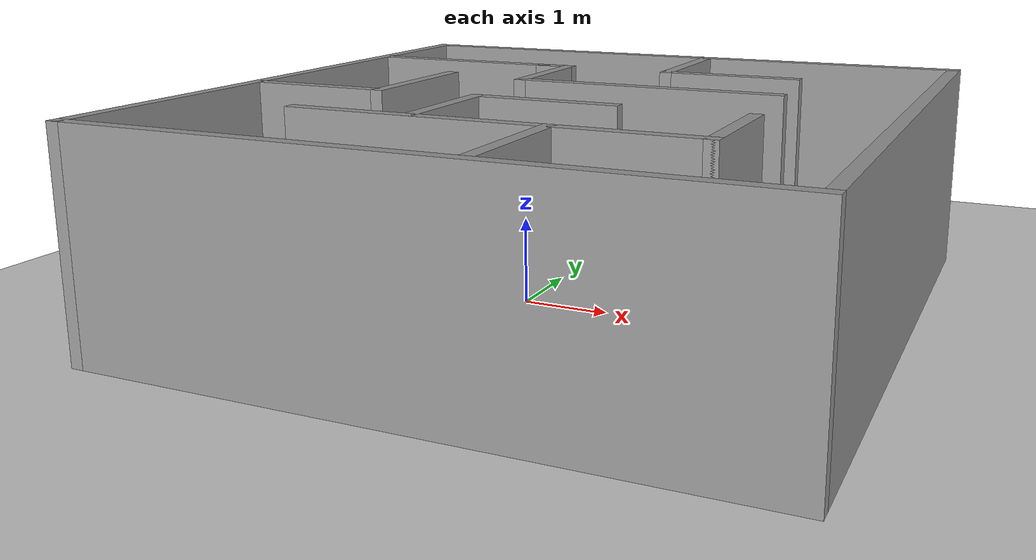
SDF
<sdf version="1.7">
 <world name="default">
  <light name="sun" type="directional">
   <pose>0 0 10 0 -0 0</pose>
   <diffuse>0.8 0.8 0.8 1</diffuse>
   <specular>0.2 0.2 0.2 1</specular>
   <attenuation>
    <range>1000</range>
    <constant>0.9</constant>
    <linear>0.01</linear>
    <quadratic>0.001</quadratic>
   </attenuation>
   <direction>-0.5 0.1 -0.9</direction>
   <spot><inner_angle>0</inner_angle><outer_angle>0</outer_angle><falloff>0</falloff></spot>
  </light>
  <model name="ground_plane">
   <static>1</static>
   <link name="link">
    <collision name="collision">
     <geometry><plane><normal>0 0 1</normal><size>100 100</size></plane></geometry>
     <surface><friction><ode><mu>100</mu><mu2>50</mu2></ode></friction></surface>
    </collision>
    <visual name="visual">
     <cast_shadows>0</cast_shadows>
     <geometry><plane><normal>0 0 1</normal><size>100 100</size></plane></geometry>
     <material>
      <script><uri>file://media/materials/scripts/gazebo.material</uri><name>Gazebo/Grey</name></script>
     </material>
    </visual>
   </link>
  </model>
  <gravity>0 0 -9.8</gravity>
  <magnetic_field>6e-06 2.3e-05 -4.2e-05</magnetic_field>
  <atmosphere type="adiabatic"/>
  <physics name="default_physics" default="0" type="ode">
   <max_step_size>0.001</max_step_size>
   <real_time_factor>1</real_time_factor>
   <real_time_update_rate>1000</real_time_update_rate>
  </physics>
  <scene><ambient>0.4 0.4 0.4 1</ambient><background>0.7 0.7 0.7 1</background><shadows>1</shadows></scene>
  <audio><device>default</device></audio>
  <spherical_coordinates>
   <surface_model>EARTH_WGS84</surface_model>
   <latitude_deg>0</latitude_deg>
   <longitude_deg>0</longitude_deg>
   <elevation>0</elevation>
   <heading_deg>0</heading_deg>
  </spherical_coordinates>
  <model name="Maze2">
   <pose>0.52024 0.024506 0 0 -0 0</pose>
   <link name="Wall_10">
    <collision name="Wall_10_Collision">
     <geometry><box><size>1.75 0.15 2.5</size></box></geometry>
     <pose>0 0 1.25 0 -0 0</pose>
    </collision>
    <visual name="Wall_10_Visual">
     <pose>0 0 1.25 0 -0 0</pose>
     <geometry><box><size>1.75 0.15 2.5</size></box></geometry>
     <material>
      <script><uri>file://media/materials/scripts/gazebo.material</uri><name>Gazebo/Grey</name></script>
      <ambient>1 1 1 1</ambient>
     </material>
     <meta><layer>0</layer></meta>
    </visual>
    <pose>1.23846 2.04144 0 0 -0 0</pose>
   </link>
   <link name="Wall_12">
    <collision name="Wall_12_Collision">
     <geometry><box><size>1.75 0.15 2.5</size></box></geometry>
     <pose>0 0 1.25 0 -0 0</pose>
    </collision>
    <visual name="Wall_12_Visual">
     <pose>0 0 1.25 0 -0 0</pose>
     <geometry><box><size>1.75 0.15 2.5</size></box></geometry>
     <material>
      <script><uri>file://media/materials/scripts/gazebo.material</uri><name>Gazebo/Grey</name></script>
      <ambient>1 1 1 1</ambient>
     </material>
     <meta><layer>0</layer></meta>
    </visual>
    <pose>0.700811 -2.85192 0 0 -0 1.5708</pose>
   </link>
   <link name="Wall_13">
    <collision name="Wall_13_Collision">
     <geometry><box><size>1.75 0.15 2.5</size></box></geometry>
     <pose>0 0 1.25 0 -0 0</pose>
    </collision>
    <visual name="Wall_13_Visual">
     <pose>0 0 1.25 0 -0 0</pose>
     <geometry><box><size>1.75 0.15 2.5</size></box></geometry>
     <material>
      <script><uri>file://media/materials/scripts/gazebo.material</uri><name>Gazebo/Grey</name></script>
      <ambient>1 1 1 1</ambient>
     </material>
     <meta><layer>0</layer></meta>
    </visual>
    <pose>1.50081 -2.05192 0 0 -0 0</pose>
   </link>
   <link name="Wall_14">
    <collision name="Wall_14_Collision">
     <geometry><box><size>1.5 0.15 2.5</size></box></geometry>
     <pose>0 0 1.25 0 -0 0</pose>
    </collision>
    <visual name="Wall_14_Visual">
     <pose>0 0 1.25 0 -0 0</pose>
     <geometry><box><size>1.5 0.15 2.5</size></box></geometry>
     <material>
      <script><uri>file://media/materials/scripts/gazebo.material</uri><name>Gazebo/Grey</name></script>
      <ambient>1 1 1 1</ambient>
     </material>
     <meta><layer>0</layer></meta>
    </visual>
    <pose>2.30081 -1.37692 0 0 -0 1.5708</pose>
   </link>
   <link name="Wall_16">
    <collision name="Wall_16_Collision">
     <geometry><box><size>3 0.15 2.5</size></box></geometry>
     <pose>0 0 1.25 0 -0 0</pose>
    </collision>
    <visual name="Wall_16_Visual">
     <pose>0 0 1.25 0 -0 0</pose>
     <geometry><box><size>3 0.15 2.5</size></box></geometry>
     <material>
      <script><uri>file://media/materials/scripts/gazebo.material</uri><name>Gazebo/Grey</name></script>
      <ambient>1 1 1 1</ambient>
     </material>
     <meta><layer>0</layer></meta>
    </visual>
    <pose>-0.724189 -2.05192 0 0 -0 3.14159</pose>
   </link>
   <link name="Wall_18">
    <collision name="Wall_18_Collision">
     <geometry><box><size>1.5 0.15 2.5</size></box></geometry>
     <pose>0 0 1.25 0 -0 0</pose>
    </collision>
    <visual name="Wall_18_Visual">
     <pose>0 0 1.25 0 -0 0</pose>
     <geometry><box><size>1.5 0.15 2.5</size></box></geometry>
     <material>
      <script><uri>file://media/materials/scripts/gazebo.material</uri><name>Gazebo/Grey</name></script>
      <ambient>1 1 1 1</ambient>
     </material>
     <meta><layer>0</layer></meta>
    </visual>
    <pose>-0.803334 -1.33285 0 0 -0 1.5708</pose>
   </link>
   <link name="Wall_19">
    <collision name="Wall_19_Collision">
     <geometry><box><size>1.75 0.15 2.5</size></box></geometry>
     <pose>0 0 1.25 0 -0 0</pose>
    </collision>
    <visual name="Wall_19_Visual">
     <pose>0 0 1.25 0 -0 0</pose>
     <geometry><box><size>1.75 0.15 2.5</size></box></geometry>
     <material>
      <script><uri>file://media/materials/scripts/gazebo.material</uri><name>Gazebo/Grey</name></script>
      <ambient>1 1 1 1</ambient>
     </material>
     <meta><layer>0</layer></meta>
    </visual>
    <pose>-0.003334 -0.65785 0 0 -0 0</pose>
   </link>
   <link name="Wall_21">
    <collision name="Wall_21_Collision">
     <geometry><box><size>1.75 0.15 2.5</size></box></geometry>
     <pose>0 0 1.25 0 -0 0</pose>
    </collision>
    <visual name="Wall_21_Visual">
     <pose>0 0 1.25 0 -0 0</pose>
     <geometry><box><size>1.75 0.15 2.5</size></box></geometry>
     <material>
      <script><uri>file://media/materials/scripts/gazebo.material</uri><name>Gazebo/Grey</name></script>
      <ambient>1 1 1 1</ambient>
     </material>
     <meta><layer>0</layer></meta>
    </visual>
    <pose>-2.80174 -0.696095 0 0 -0 0</pose>
   </link>
   <link name="Wall_22">
    <collision name="Wall_22_Collision">
     <geometry><box><size>1.75 0.15 2.5</size></box></geometry>
     <pose>0 0 1.25 0 -0 0</pose>
    </collision>
    <visual name="Wall_22_Visual">
     <pose>0 0 1.25 0 -0 0</pose>
     <geometry><box><size>1.75 0.15 2.5</size></box></geometry>
     <material>
      <script><uri>file://media/materials/scripts/gazebo.material</uri><name>Gazebo/Grey</name></script>
      <ambient>1 1 1 1</ambient>
     </material>
     <meta><layer>0</layer></meta>
    </visual>
    <pose>-2.00174 0.103904 0 0 -0 1.5708</pose>
   </link>
   <link name="Wall_25">
    <collision name="Wall_25_Collision">
     <geometry><box><size>2.5 0.15 2.5</size></box></geometry>
     <pose>0 0 1.25 0 -0 0</pose>
    </collision>
    <visual name="Wall_25_Visual">
     <pose>0 0 1.25 0 -0 0</pose>
     <geometry><box><size>2.5 0.15 2.5</size></box></geometry>
     <material>
      <script><uri>file://media/materials/scripts/gazebo.material</uri><name>Gazebo/Grey</name></script>
      <ambient>1 1 1 1</ambient>
     </material>
     <meta><layer>0</layer></meta>
    </visual>
    <pose>-2.44423 2.06733 0 0 -0 0</pose>
   </link>
   <link name="Wall_26">
    <collision name="Wall_26_Collision">
     <geometry><box><size>0.5 0.15 2.5</size></box></geometry>
     <pose>0 0 1.25 0 -0 0</pose>
    </collision>
    <visual name="Wall_26_Visual">
     <pose>0 0 1.25 0 -0 0</pose>
     <geometry><box><size>0.5 0.15 2.5</size></box></geometry>
     <material>
      <script><uri>file://media/materials/scripts/gazebo.material</uri><name>Gazebo/Grey</name></script>
      <ambient>1 1 1 1</ambient>
     </material>
     <meta><layer>0</layer></meta>
    </visual>
    <pose>-1.09423 2.06733 0 0 -0 0</pose>
   </link>
   <link name="Wall_27">
    <collision name="Wall_27_Collision">
     <geometry><box><size>1.5 0.15 2.5</size></box></geometry>
     <pose>0 0 1.25 0 -0 0</pose>
    </collision>
    <visual name="Wall_27_Visual">
     <pose>0 0 1.25 0 -0 0</pose>
     <geometry><box><size>1.5 0.15 2.5</size></box></geometry>
     <material>
      <script><uri>file://media/materials/scripts/gazebo.material</uri><name>Gazebo/Grey</name></script>
      <ambient>1 1 1 1</ambient>
     </material>
     <meta><layer>0</layer></meta>
    </visual>
    <pose>-0.919234 1.39233 0 0 -0 -1.5708</pose>
   </link>
   <link name="Wall_28">
    <collision name="Wall_28_Collision">
     <geometry><box><size>3.25 0.15 2.5</size></box></geometry>
     <pose>0 0 1.25 0 -0 0</pose>
    </collision>
    <visual name="Wall_28_Visual">
     <pose>0 0 1.25 0 -0 0</pose>
     <geometry><box><size>3.25 0.15 2.5</size></box></geometry>
     <material>
      <script><uri>file://media/materials/scripts/gazebo.material</uri><name>Gazebo/Grey</name></script>
      <ambient>1 1 1 1</ambient>
     </material>
     <meta><layer>0</layer></meta>
    </visual>
    <pose>0.630766 0.717334 0 0 -0 0</pose>
   </link>
   <link name="Wall_3">
    <collision name="Wall_3_Collision">
     <geometry><box><size>7.5 0.15 2.5</size></box></geometry>
     <pose>0 0 1.25 0 -0 0</pose>
    </collision>
    <visual name="Wall_3_Visual">
     <pose>0 0 1.25 0 -0 0</pose>
     <geometry><box><size>7.5 0.15 2.5</size></box></geometry>
     <material>
      <script><uri>file://media/materials/scripts/gazebo.material</uri><name>Gazebo/Grey</name></script>
      <ambient>1 1 1 1</ambient>
     </material>
     <meta><layer>0</layer></meta>
    </visual>
    <pose>0 3.675 0 0 -0 0</pose>
   </link>
   <link name="Wall_4">
    <collision name="Wall_4_Collision">
     <geometry><box><size>7.5 0.15 2.5</size></box></geometry>
     <pose>0 0 1.25 0 -0 0</pose>
    </collision>
    <visual name="Wall_4_Visual">
     <pose>0 0 1.25 0 -0 0</pose>
     <geometry><box><size>7.5 0.15 2.5</size></box></geometry>
     <material>
      <script><uri>file://media/materials/scripts/gazebo.material</uri><name>Gazebo/Grey</name></script>
      <ambient>1 1 1 1</ambient>
     </material>
     <meta><layer>0</layer></meta>
    </visual>
    <pose>3.675 0 0 0 -0 -1.5708</pose>
   </link>
   <link name="Wall_5">
    <collision name="Wall_5_Collision">
     <geometry><box><size>7.5 0.15 2.5</size></box></geometry>
     <pose>0 0 1.25 0 -0 0</pose>
    </collision>
    <visual name="Wall_5_Visual">
     <pose>0 0 1.25 0 -0 0</pose>
     <geometry><box><size>7.5 0.15 2.5</size></box></geometry>
     <material>
      <script><uri>file://media/materials/scripts/gazebo.material</uri><name>Gazebo/Grey</name></script>
      <ambient>1 1 1 1</ambient>
     </material>
     <meta><layer>0</layer></meta>
    </visual>
    <pose>0 -3.675 0 0 -0 3.14159</pose>
   </link>
   <link name="Wall_6">
    <collision name="Wall_6_Collision">
     <geometry><box><size>7.5 0.15 2.5</size></box></geometry>
     <pose>0 0 1.25 0 -0 0</pose>
    </collision>
    <visual name="Wall_6_Visual">
     <pose>0 0 1.25 0 -0 0</pose>
     <geometry><box><size>7.5 0.15 2.5</size></box></geometry>
     <material>
      <script><uri>file://media/materials/scripts/gazebo.material</uri><name>Gazebo/Grey</name></script>
      <ambient>1 1 1 1</ambient>
     </material>
     <meta><layer>0</layer></meta>
    </visual>
    <pose>-3.675 0 0 0 -0 1.5708</pose>
   </link>
   <link name="Wall_9">
    <collision name="Wall_9_Collision">
     <geometry><box><size>1.75 0.15 2.5</size></box></geometry>
     <pose>0 0 1.25 0 -0 0</pose>
    </collision>
    <visual name="Wall_9_Visual">
     <pose>0 0 1.25 0 -0 0</pose>
     <geometry><box><size>1.75 0.15 2.5</size></box></geometry>
     <material>
      <script><uri>file://media/materials/scripts/gazebo.material</uri><name>Gazebo/Grey</name></script>
      <ambient>1 1 1 1</ambient>
     </material>
     <meta><layer>0</layer></meta>
    </visual>
    <pose>0.43846 2.84144 0 0 -0 -1.5708</pose>
   </link>
   <static>1</static>
  </model>
 </world>
</sdf>
